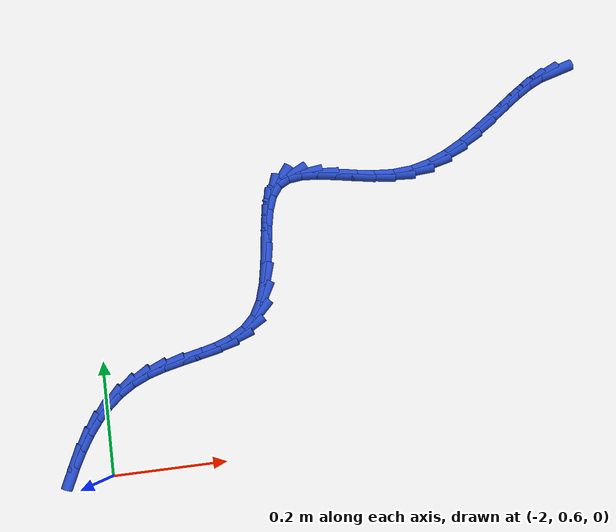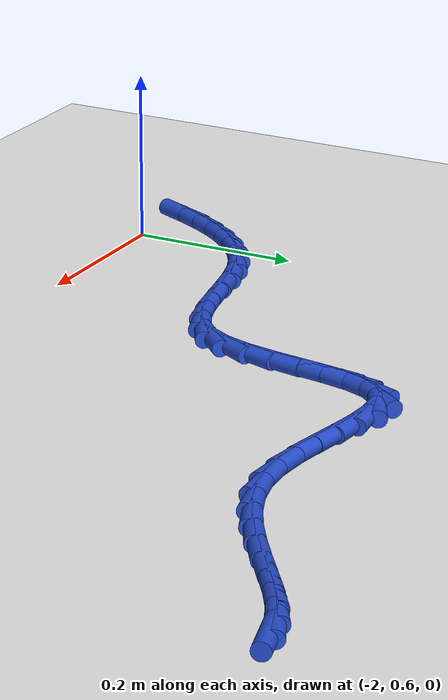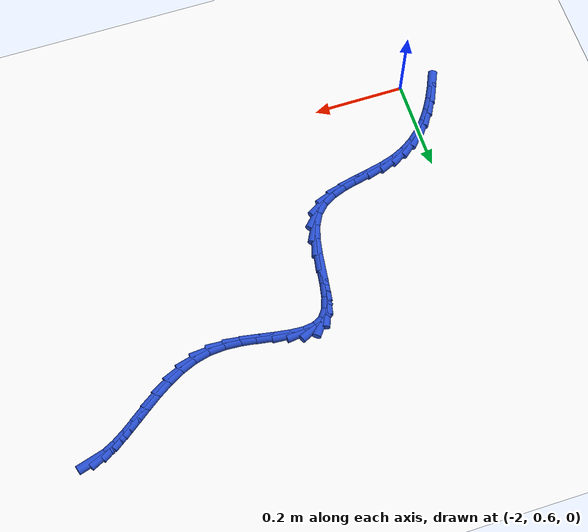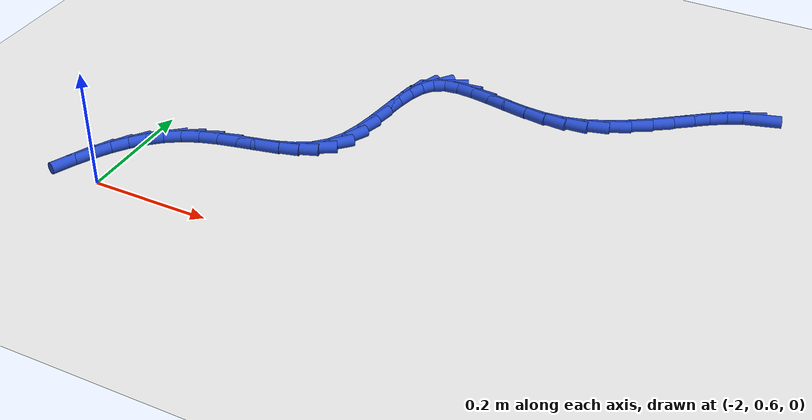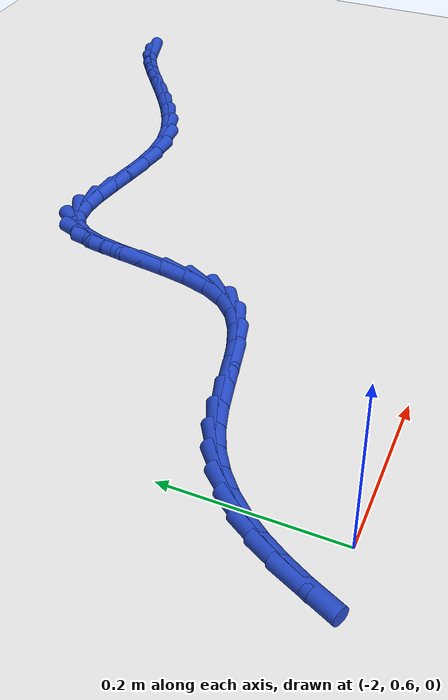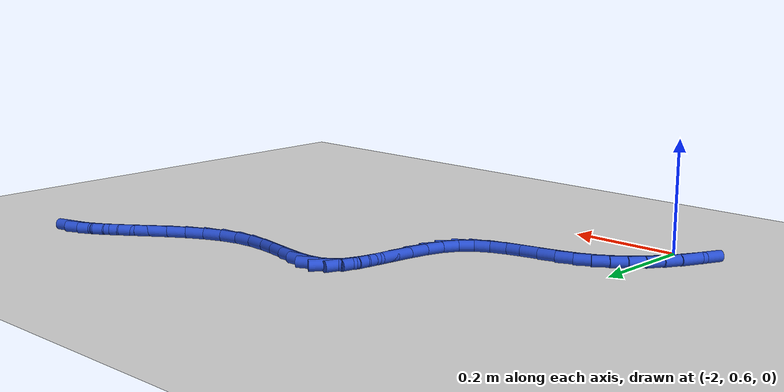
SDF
<sdf version="1.6">
 <world name="default">
  <model name="ground_plane">
   <static>1</static>
   <link name="link">
    <collision name="collision">
     <geometry><plane><normal>0 0 1</normal><size>100 100</size></plane></geometry>
     <surface><friction><ode><mu>100</mu><mu2>50</mu2></ode></friction></surface>
    </collision>
    <visual name="visual">
     <cast_shadows>0</cast_shadows>
     <geometry><plane><normal>0 0 1</normal><size>100 100</size></plane></geometry>
     <material>
      <script><uri>file://media/materials/scripts/gazebo.material</uri><name>Gazebo/WhiteGlow</name></script>
     </material>
    </visual>
   </link>
  </model>
  <model name="line">
   <link name="link_59">
    <pose>-1.1248728828810233 1.2264395088490148 0.01 0 1.57 0.27999174864736504</pose>
    <collision name="collision">
     <geometry><cylinder><radius>0.01</radius><length>0.08</length></cylinder></geometry>
    </collision>
    <visual name="visual">
     <material>
      <script><name>Gazebo/Blue</name><uri>file://media/materials/scripts/gazebo.material</uri></script>
     </material>
     <geometry><cylinder><radius>0.01</radius><length>0.08</length></cylinder></geometry>
    </visual>
   </link>
   <link name="link_60">
    <pose>-1.148020952443739 1.219783388109623 0.01 0 1.57 0.45975655175047264</pose>
    <collision name="collision">
     <geometry><cylinder><radius>0.01</radius><length>0.08</length></cylinder></geometry>
    </collision>
    <visual name="visual">
     <material>
      <script><name>Gazebo/Blue</name><uri>file://media/materials/scripts/gazebo.material</uri></script>
     </material>
     <geometry><cylinder><radius>0.01</radius><length>0.08</length></cylinder></geometry>
    </visual>
   </link>
   <link name="link_61">
    <pose>-1.1721601925134988 1.2078309496424022 0.01 0 1.57 0.5653824780719057</pose>
    <collision name="collision">
     <geometry><cylinder><radius>0.01</radius><length>0.08</length></cylinder></geometry>
    </collision>
    <visual name="visual">
     <material>
      <script><name>Gazebo/Blue</name><uri>file://media/materials/scripts/gazebo.material</uri></script>
     </material>
     <geometry><cylinder><radius>0.01</radius><length>0.08</length></cylinder></geometry>
    </visual>
   </link>
   <link name="link_62">
    <pose>-1.1973387639294095 1.1918558223219198 0.01 0 1.57 0.6193088644832283</pose>
    <collision name="collision">
     <geometry><cylinder><radius>0.01</radius><length>0.08</length></cylinder></geometry>
    </collision>
    <visual name="visual">
     <material>
      <script><name>Gazebo/Blue</name><uri>file://media/materials/scripts/gazebo.material</uri></script>
     </material>
     <geometry><cylinder><radius>0.01</radius><length>0.08</length></cylinder></geometry>
    </visual>
   </link>
   <link name="link_63">
    <pose>-1.223604827530578 1.1731316350227405 0.01 0 1.57 0.635236731874771</pose>
    <collision name="collision">
     <geometry><cylinder><radius>0.01</radius><length>0.08</length></cylinder></geometry>
    </collision>
    <visual name="visual">
     <material>
      <script><name>Gazebo/Blue</name><uri>file://media/materials/scripts/gazebo.material</uri></script>
     </material>
     <geometry><cylinder><radius>0.01</radius><length>0.08</length></cylinder></geometry>
    </visual>
   </link>
   <link name="link_64">
    <pose>-1.2510065441561096 1.152932016619431 0.01 0 1.57 0.6198598608830022</pose>
    <collision name="collision">
     <geometry><cylinder><radius>0.01</radius><length>0.08</length></cylinder></geometry>
    </collision>
    <visual name="visual">
     <material>
      <script><name>Gazebo/Blue</name><uri>file://media/materials/scripts/gazebo.material</uri></script>
     </material>
     <geometry><cylinder><radius>0.01</radius><length>0.08</length></cylinder></geometry>
    </visual>
   </link>
   <link name="link_65">
    <pose>-1.279592074645112 1.132530595986558 0.01 0 1.57 0.5751533651573076</pose>
    <collision name="collision">
     <geometry><cylinder><radius>0.01</radius><length>0.08</length></cylinder></geometry>
    </collision>
    <visual name="visual">
     <material>
      <script><name>Gazebo/Blue</name><uri>file://media/materials/scripts/gazebo.material</uri></script>
     </material>
     <geometry><cylinder><radius>0.01</radius><length>0.08</length></cylinder></geometry>
    </visual>
   </link>
   <link name="link_66">
    <pose>-1.3094095798366912 1.1132010019986862 0.01 0 1.57 0.4998865643165475</pose>
    <collision name="collision">
     <geometry><cylinder><radius>0.01</radius><length>0.08</length></cylinder></geometry>
    </collision>
    <visual name="visual">
     <material>
      <script><name>Gazebo/Blue</name><uri>file://media/materials/scripts/gazebo.material</uri></script>
     </material>
     <geometry><cylinder><radius>0.01</radius><length>0.08</length></cylinder></geometry>
    </visual>
   </link>
   <link name="link_67">
    <pose>-1.3405072205699533 1.0962168635303824 0.01 0 1.57 0.39095499769523057</pose>
    <collision name="collision">
     <geometry><cylinder><radius>0.01</radius><length>0.08</length></cylinder></geometry>
    </collision>
    <visual name="visual">
     <material>
      <script><name>Gazebo/Blue</name><uri>file://media/materials/scripts/gazebo.material</uri></script>
     </material>
     <geometry><cylinder><radius>0.01</radius><length>0.08</length></cylinder></geometry>
    </visual>
   </link>
   <link name="link_68">
    <pose>-1.3729331576840047 1.0828518094562123 0.01 0 1.57 0.24558395068451289</pose>
    <collision name="collision">
     <geometry><cylinder><radius>0.01</radius><length>0.08</length></cylinder></geometry>
    </collision>
    <visual name="visual">
     <material>
      <script><name>Gazebo/Blue</name><uri>file://media/materials/scripts/gazebo.material</uri></script>
     </material>
     <geometry><cylinder><radius>0.01</radius><length>0.08</length></cylinder></geometry>
    </visual>
   </link>
   <link name="link_69">
    <pose>-1.4067355520179523 1.0743794686507426 0.01 0 1.57 0.07316014803526646</pose>
    <collision name="collision">
     <geometry><cylinder><radius>0.01</radius><length>0.08</length></cylinder></geometry>
    </collision>
    <visual name="visual">
     <material>
      <script><name>Gazebo/Blue</name><uri>file://media/materials/scripts/gazebo.material</uri></script>
     </material>
     <geometry><cylinder><radius>0.01</radius><length>0.08</length></cylinder></geometry>
    </visual>
   </link>
   <link name="link_70">
    <pose>-1.4418786087152187 1.0718038004380324 0.01 0 1.57 -0.06365221837223159</pose>
    <collision name="collision">
     <geometry><cylinder><radius>0.01</radius><length>0.08</length></cylinder></geometry>
    </collision>
    <visual name="visual">
     <material>
      <script><name>Gazebo/Blue</name><uri>file://media/materials/scripts/gazebo.material</uri></script>
     </material>
     <geometry><cylinder><radius>0.01</radius><length>0.08</length></cylinder></geometry>
    </visual>
   </link>
   <link name="link_71">
    <pose>-1.4776906883930805 1.074086402320701 0.01 0 1.57 -0.14447199310807457</pose>
    <collision name="collision">
     <geometry><cylinder><radius>0.01</radius><length>0.08</length></cylinder></geometry>
    </collision>
    <visual name="visual">
     <material>
      <script><name>Gazebo/Blue</name><uri>file://media/materials/scripts/gazebo.material</uri></script>
     </material>
     <geometry><cylinder><radius>0.01</radius><length>0.08</length></cylinder></geometry>
    </visual>
   </link>
   <link name="link_72">
    <pose>-1.5132090411086754 1.0792538113118892 0.01 0 1.57 -0.1754634651041353</pose>
    <collision name="collision">
     <geometry><cylinder><radius>0.01</radius><length>0.08</length></cylinder></geometry>
    </collision>
    <visual name="visual">
     <material>
      <script><name>Gazebo/Blue</name><uri>file://media/materials/scripts/gazebo.material</uri></script>
     </material>
     <geometry><cylinder><radius>0.01</radius><length>0.08</length></cylinder></geometry>
    </visual>
   </link>
   <link name="link_73">
    <pose>-1.5474694073101893 1.0853277154914547 0.01 0 1.57 -0.15487886077908944</pose>
    <collision name="collision">
     <geometry><cylinder><radius>0.01</radius><length>0.08</length></cylinder></geometry>
    </collision>
    <visual name="visual">
     <material>
      <script><name>Gazebo/Blue</name><uri>file://media/materials/scripts/gazebo.material</uri></script>
     </material>
     <geometry><cylinder><radius>0.01</radius><length>0.08</length></cylinder></geometry>
    </visual>
   </link>
   <link name="link_74">
    <pose>-1.5795075274458088 1.0903298029392539 0.01 0 1.57 -0.06755215624151038</pose>
    <collision name="collision">
     <geometry><cylinder><radius>0.01</radius><length>0.08</length></cylinder></geometry>
    </collision>
    <visual name="visual">
     <material>
      <script><name>Gazebo/Blue</name><uri>file://media/materials/scripts/gazebo.material</uri></script>
     </material>
     <geometry><cylinder><radius>0.01</radius><length>0.08</length></cylinder></geometry>
    </visual>
   </link>
   <link name="link_75">
    <pose>-1.6083591419637193 1.0922817617351437 0.01 0 1.57 0.12391153391176991</pose>
    <collision name="collision">
     <geometry><cylinder><radius>0.01</radius><length>0.08</length></cylinder></geometry>
    </collision>
    <visual name="visual">
     <material>
      <script><name>Gazebo/Blue</name><uri>file://media/materials/scripts/gazebo.material</uri></script>
     </material>
     <geometry><cylinder><radius>0.01</radius><length>0.08</length></cylinder></geometry>
    </visual>
   </link>
   <link name="link_76">
    <pose>-1.6330599913121073 1.0892052799589815 0.01 0 1.57 0.47543561808769347</pose>
    <collision name="collision">
     <geometry><cylinder><radius>0.01</radius><length>0.08</length></cylinder></geometry>
    </collision>
    <visual name="visual">
     <material>
      <script><name>Gazebo/Blue</name><uri>file://media/materials/scripts/gazebo.material</uri></script>
     </material>
     <geometry><cylinder><radius>0.01</radius><length>0.08</length></cylinder></geometry>
    </visual>
   </link>
   <link name="link_77">
    <pose>-1.65264581593916 1.0791220456906245 0.01 0 1.57 0.9252139726959562</pose>
    <collision name="collision">
     <geometry><cylinder><radius>0.01</radius><length>0.08</length></cylinder></geometry>
    </collision>
    <visual name="visual">
     <material>
      <script><name>Gazebo/Blue</name><uri>file://media/materials/scripts/gazebo.material</uri></script>
     </material>
     <geometry><cylinder><radius>0.01</radius><length>0.08</length></cylinder></geometry>
    </visual>
   </link>
   <link name="link_78">
    <pose>-1.6665434936616992 1.06067193226871 0.01 0 1.57 1.2213101138235727</pose>
    <collision name="collision">
     <geometry><cylinder><radius>0.01</radius><length>0.08</length></cylinder></geometry>
    </collision>
    <visual name="visual">
     <material>
      <script><name>Gazebo/Blue</name><uri>file://media/materials/scripts/gazebo.material</uri></script>
     </material>
     <geometry><cylinder><radius>0.01</radius><length>0.08</length></cylinder></geometry>
    </visual>
   </link>
   <link name="link_79">
    <pose>-1.6758503583821003 1.0351349374749295 0.01 0 1.57 1.3692804238048197</pose>
    <collision name="collision">
     <geometry><cylinder><radius>0.01</radius><length>0.08</length></cylinder></geometry>
    </collision>
    <visual name="visual">
     <material>
      <script><name>Gazebo/Blue</name><uri>file://media/materials/scripts/gazebo.material</uri></script>
     </material>
     <geometry><cylinder><radius>0.01</radius><length>0.08</length></cylinder></geometry>
    </visual>
   </link>
   <link name="link_80">
    <pose>-1.6821096026532059 1.0044957303070698 0.01 0 1.57 1.4308614960038961</pose>
    <collision name="collision">
     <geometry><cylinder><radius>0.01</radius><length>0.08</length></cylinder></geometry>
    </collision>
    <visual name="visual">
     <material>
      <script><name>Gazebo/Blue</name><uri>file://media/materials/scripts/gazebo.material</uri></script>
     </material>
     <geometry><cylinder><radius>0.01</radius><length>0.08</length></cylinder></geometry>
    </visual>
   </link>
   <link name="link_81">
    <pose>-1.6868644233735355 0.9707389866311821 0.01 0 1.57 1.4342579929798316</pose>
    <collision name="collision">
     <geometry><cylinder><radius>0.01</radius><length>0.08</length></cylinder></geometry>
    </collision>
    <visual name="visual">
     <material>
      <script><name>Gazebo/Blue</name><uri>file://media/materials/scripts/gazebo.material</uri></script>
     </material>
     <geometry><cylinder><radius>0.01</radius><length>0.08</length></cylinder></geometry>
    </visual>
   </link>
   <link name="link_82">
    <pose>-1.6916580174416092 0.9358493823133178 0.01 0 1.57 1.3856334618695747</pose>
    <collision name="collision">
     <geometry><cylinder><radius>0.01</radius><length>0.08</length></cylinder></geometry>
    </collision>
    <visual name="visual">
     <material>
      <script><name>Gazebo/Blue</name><uri>file://media/materials/scripts/gazebo.material</uri></script>
     </material>
     <geometry><cylinder><radius>0.01</radius><length>0.08</length></cylinder></geometry>
    </visual>
   </link>
   <link name="link_83">
    <pose>-1.6980335817559487 0.9018115932195282 0.01 0 1.57 1.2752180929821504</pose>
    <collision name="collision">
     <geometry><cylinder><radius>0.01</radius><length>0.08</length></cylinder></geometry>
    </collision>
    <visual name="visual">
     <material>
      <script><name>Gazebo/Blue</name><uri>file://media/materials/scripts/gazebo.material</uri></script>
     </material>
     <geometry><cylinder><radius>0.01</radius><length>0.08</length></cylinder></geometry>
    </visual>
   </link>
   <link name="link_84">
    <pose>-1.707534313215073 0.8706102952158641 0.01 0 1.57 1.077901438491657</pose>
    <collision name="collision">
     <geometry><cylinder><radius>0.01</radius><length>0.08</length></cylinder></geometry>
    </collision>
    <visual name="visual">
     <material>
      <script><name>Gazebo/Blue</name><uri>file://media/materials/scripts/gazebo.material</uri></script>
     </material>
     <geometry><cylinder><radius>0.01</radius><length>0.08</length></cylinder></geometry>
    </visual>
   </link>
   <link name="link_85">
    <pose>-1.721703408717503 0.8442301641683763 0.01 0 1.57 0.786217073422898</pose>
    <collision name="collision">
     <geometry><cylinder><radius>0.01</radius><length>0.08</length></cylinder></geometry>
    </collision>
    <visual name="visual">
     <material>
      <script><name>Gazebo/Blue</name><uri>file://media/materials/scripts/gazebo.material</uri></script>
     </material>
     <geometry><cylinder><radius>0.01</radius><length>0.08</length></cylinder></geometry>
    </visual>
   </link>
   <link name="link_86">
    <pose>-1.741703747003512 0.8241970420729791 0.01 0 1.57 0.5228910142721227</pose>
    <collision name="collision">
     <geometry><cylinder><radius>0.01</radius><length>0.08</length></cylinder></geometry>
    </collision>
    <visual name="visual">
     <material>
      <script><name>Gazebo/Blue</name><uri>file://media/materials/scripts/gazebo.material</uri></script>
     </material>
     <geometry><cylinder><radius>0.01</radius><length>0.08</length></cylinder></geometry>
    </visual>
   </link>
   <link name="link_87">
    <pose>-1.7667914197651091 0.8097363325638887 0.01 0 1.57 0.345610851170592</pose>
    <collision name="collision">
     <geometry><cylinder><radius>0.01</radius><length>0.08</length></cylinder></geometry>
    </collision>
    <visual name="visual">
     <material>
      <script><name>Gazebo/Blue</name><uri>file://media/materials/scripts/gazebo.material</uri></script>
     </material>
     <geometry><cylinder><radius>0.01</radius><length>0.08</length></cylinder></geometry>
    </visual>
   </link>
   <link name="link_88">
    <pose>-1.795626199535456 0.7993540115499851 0.01 0 1.57 0.24461222767806393</pose>
    <collision name="collision">
     <geometry><cylinder><radius>0.01</radius><length>0.08</length></cylinder></geometry>
    </collision>
    <visual name="visual">
     <material>
      <script><name>Gazebo/Blue</name><uri>file://media/materials/scripts/gazebo.material</uri></script>
     </material>
     <geometry><cylinder><radius>0.01</radius><length>0.08</length></cylinder></geometry>
    </visual>
   </link>
   <link name="link_89">
    <pose>-1.8268676557121408 0.7915558098677569 0.01 0 1.57 0.20473021946640144</pose>
    <collision name="collision">
     <geometry><cylinder><radius>0.01</radius><length>0.08</length></cylinder></geometry>
    </collision>
    <visual name="visual">
     <material>
      <script><name>Gazebo/Blue</name><uri>file://media/materials/scripts/gazebo.material</uri></script>
     </material>
     <geometry><cylinder><radius>0.01</radius><length>0.08</length></cylinder></geometry>
    </visual>
   </link>
   <link name="link_90">
    <pose>-1.8591753576927514 0.7848474583536921 0.01 0 1.57 0.2184967306821728</pose>
    <collision name="collision">
     <geometry><cylinder><radius>0.01</radius><length>0.08</length></cylinder></geometry>
    </collision>
    <visual name="visual">
     <material>
      <script><name>Gazebo/Blue</name><uri>file://media/materials/scripts/gazebo.material</uri></script>
     </material>
     <geometry><cylinder><radius>0.01</radius><length>0.08</length></cylinder></geometry>
    </visual>
   </link>
   <link name="link_91">
    <pose>-1.8912088748748765 0.7777346878442788 0.01 0 1.57 0.2880086257925667</pose>
    <collision name="collision">
     <geometry><cylinder><radius>0.01</radius><length>0.08</length></cylinder></geometry>
    </collision>
    <visual name="visual">
     <material>
      <script><name>Gazebo/Blue</name><uri>file://media/materials/scripts/gazebo.material</uri></script>
     </material>
     <geometry><cylinder><radius>0.01</radius><length>0.08</length></cylinder></geometry>
    </visual>
   </link>
   <link name="link_92">
    <pose>-1.921627776656104 0.7687232291760054 0.01 0 1.57 0.4163069476465975</pose>
    <collision name="collision">
     <geometry><cylinder><radius>0.01</radius><length>0.08</length></cylinder></geometry>
    </collision>
    <visual name="visual">
     <material>
      <script><name>Gazebo/Blue</name><uri>file://media/materials/scripts/gazebo.material</uri></script>
     </material>
     <geometry><cylinder><radius>0.01</radius><length>0.08</length></cylinder></geometry>
    </visual>
   </link>
   <link name="link_93">
    <pose>-1.9492593412892008 0.7565059253407277 0.01 0 1.57 0.5617841234947448</pose>
    <collision name="collision">
     <geometry><cylinder><radius>0.01</radius><length>0.08</length></cylinder></geometry>
    </collision>
    <visual name="visual">
     <material>
      <script><name>Gazebo/Blue</name><uri>file://media/materials/scripts/gazebo.material</uri></script>
     </material>
     <geometry><cylinder><radius>0.01</radius><length>0.08</length></cylinder></geometry>
    </visual>
   </link>
   <link name="link_94">
    <pose>-1.9739798021772224 0.7409459347489292 0.01 0 1.57 0.6995108405823739</pose>
    <collision name="collision">
     <geometry><cylinder><radius>0.01</radius><length>0.08</length></cylinder></geometry>
    </collision>
    <visual name="visual">
     <material>
      <script><name>Gazebo/Blue</name><uri>file://media/materials/scripts/gazebo.material</uri></script>
     </material>
     <geometry><cylinder><radius>0.01</radius><length>0.08</length></cylinder></geometry>
    </visual>
   </link>
   <link name="link_95">
    <pose>-1.9960701263088925 0.7223579755899959 0.01 0 1.57 0.823346452514652</pose>
    <collision name="collision">
     <geometry><cylinder><radius>0.01</radius><length>0.08</length></cylinder></geometry>
    </collision>
    <visual name="visual">
     <material>
      <script><name>Gazebo/Blue</name><uri>file://media/materials/scripts/gazebo.material</uri></script>
     </material>
     <geometry><cylinder><radius>0.01</radius><length>0.08</length></cylinder></geometry>
    </visual>
   </link>
   <link name="link_96">
    <pose>-2.015812142518921 0.7010577276117222 0.01 0 1.57 0.9299229911424787</pose>
    <collision name="collision">
     <geometry><cylinder><radius>0.01</radius><length>0.08</length></cylinder></geometry>
    </collision>
    <visual name="visual">
     <material>
      <script><name>Gazebo/Blue</name><uri>file://media/materials/scripts/gazebo.material</uri></script>
     </material>
     <geometry><cylinder><radius>0.01</radius><length>0.08</length></cylinder></geometry>
    </visual>
   </link>
   <link name="link_97">
    <pose>-2.0334876796420183 0.677360870561904 0.01 0 1.57 1.0183641731694952</pose>
    <collision name="collision">
     <geometry><cylinder><radius>0.01</radius><length>0.08</length></cylinder></geometry>
    </collision>
    <visual name="visual">
     <material>
      <script><name>Gazebo/Blue</name><uri>file://media/materials/scripts/gazebo.material</uri></script>
     </material>
     <geometry><cylinder><radius>0.01</radius><length>0.08</length></cylinder></geometry>
    </visual>
   </link>
   <link name="link_98">
    <pose>-2.049378566512891 0.6515830841883351 0.01 0 1.57 1.0894016029265934</pose>
    <collision name="collision">
     <geometry><cylinder><radius>0.01</radius><length>0.08</length></cylinder></geometry>
    </collision>
    <visual name="visual">
     <material>
      <script><name>Gazebo/Blue</name><uri>file://media/materials/scripts/gazebo.material</uri></script>
     </material>
     <geometry><cylinder><radius>0.01</radius><length>0.08</length></cylinder></geometry>
    </visual>
   </link>
   <link name="link_99">
    <pose>-2.0637666319662515 0.6240400482388109 0.01 0 1.57 1.1444943073441882</pose>
    <collision name="collision">
     <geometry><cylinder><radius>0.01</radius><length>0.08</length></cylinder></geometry>
    </collision>
    <visual name="visual">
     <material>
      <script><name>Gazebo/Blue</name><uri>file://media/materials/scripts/gazebo.material</uri></script>
     </material>
     <geometry><cylinder><radius>0.01</radius><length>0.08</length></cylinder></geometry>
    </visual>
   </link>
  </model>
 </world>
</sdf>
